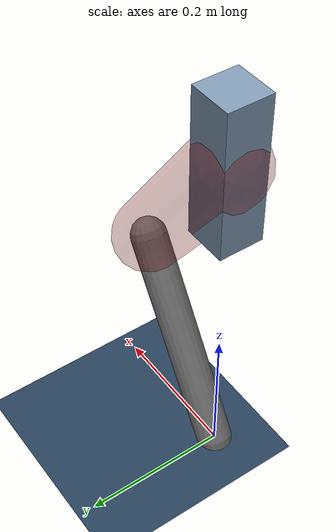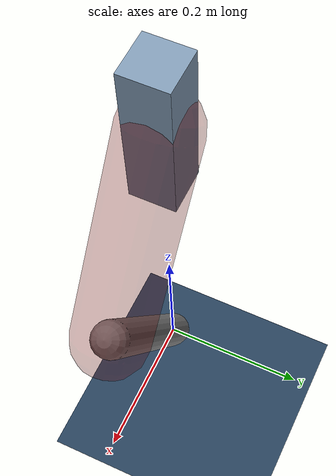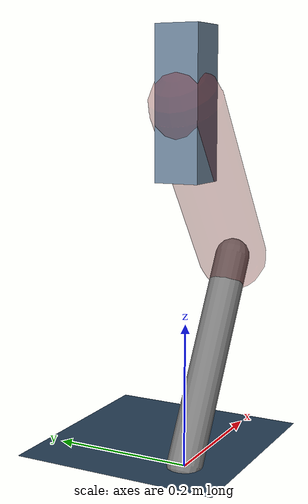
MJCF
<mujoco model="Hopper2D">
	<compiler inertiafromgeom="true" angle="radian" />
	<option timestep="0.001" integrator="implicit" cone="elliptic" solver="Newton" tolerance="1e-10" />

	<default>
		<geom contype="1" conaffinity="1" condim="3" friction="2 0.005 0.0001" solref="0.005 1" />
		<joint limited="true" damping="0.1" />
	</default>

	<asset>
		<texture name="skybox" type="skybox" builtin="gradient" rgb1=".4 .6 .8" rgb2="0 0 0" width="800" height="800" />
		<texture name="grid" type="2d" builtin="checker" rgb1=".1 .2 .3" rgb2=".2 .3 .4" width="300" height="300" mark="edge" markrgb=".2 .3 .4" />
		<material name="ground" texture="grid" texrepeat="1 1" texuniform="true" reflectance="0.1" />
		<material name="leg" rgba="0.5 0.6 0.7 1" />
	</asset>

	<worldbody>

		<geom name="floor" type="plane" size="5 5 0.25" material="ground" />

		<light directional="false" diffuse="0.8 0.8 0.8" specular="0.3 0.3 0.3" pos="0 0 2" dir="0 0 -1" />
		<light mode="targetbodycom" target="base" directional="false" diffuse="0.8 0.8 0.8" specular="0.3 0.3 0.3" pos="0 0 2" dir="0 0 -1" />

		<camera name="fixed" pos="0 -2 1" xyaxes="1 0 0 0 0 1" />
		<camera name="tracking" mode="trackcom" pos="0 -3 1" />

		<body name="root" pos="0 0 0.49100064810665556">
			<joint name="slide_x" type="slide" axis="1 0 0" range="-100 100" />
			<joint name="slide_z" type="slide" axis="0 0 1" range="0 10" />

			<body name="base" pos="0 0 0">
				<geom name="torso" type="box" size="0.03 0.03 0.1" mass="3.3369999999999997" material="leg" />

				<body name="link1" pos="0 0 0" euler="0 0.951541120950105 0">
					<joint type="hinge" axis="0 -1 0" pos="0 0 0" name="hinge1" limited="true" range="-3.14 3.14" stiffness="0" damping="0.1" />
					<geom name="thigh" type="capsule" fromto="0 0 0 0.27086274443071523 0 0" size="0.05" rgba="0.5 0 0 0.3" mass="0.9109431355198595" />

					<body name="link2" pos="0.27086274443071523 0 0" euler="0 1.1458476376865507 0">
						<joint type="hinge" axis="0 -1 0" pos="0 0 0" name="hinge2" limited="true" range="-3.14 3.14" stiffness="0" damping="0.1" />
						<geom name="shank" type="capsule" fromto="0 0 0 0.3128125100793686 0 0" size="0.025" mass="0.4938500080634949" />

					</body>
				</body>
			</body>
		</body>
	</worldbody>

	<actuator>
		<motor name="torque1" joint="hinge1" ctrlrange="-172.4801082496259 172.4801082496259" ctrllimited="true" gear="1" />
		<motor name="torque2" joint="hinge2" ctrlrange="-20.879809554262653 20.879809554262653" ctrllimited="true" gear="1" />
	</actuator>
</mujoco>
